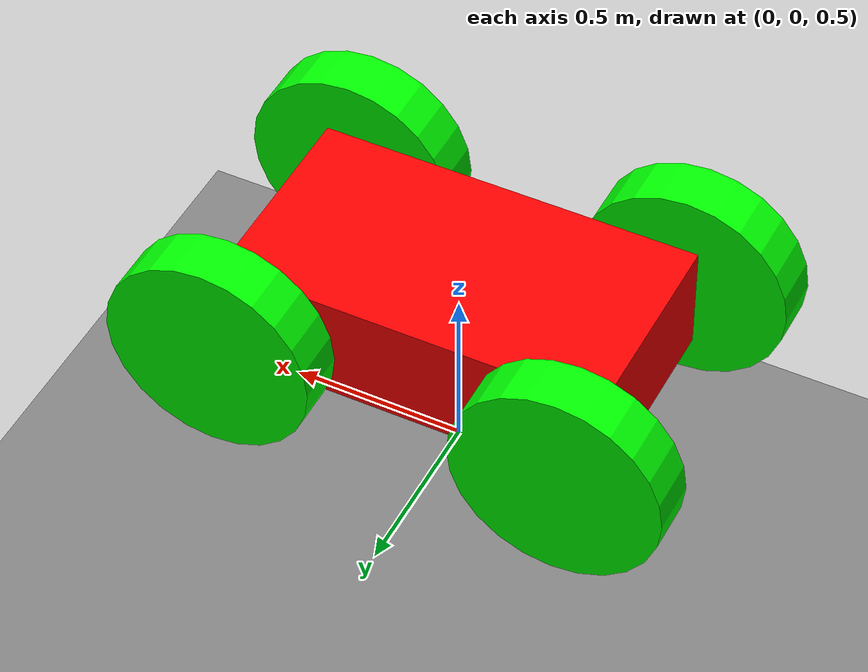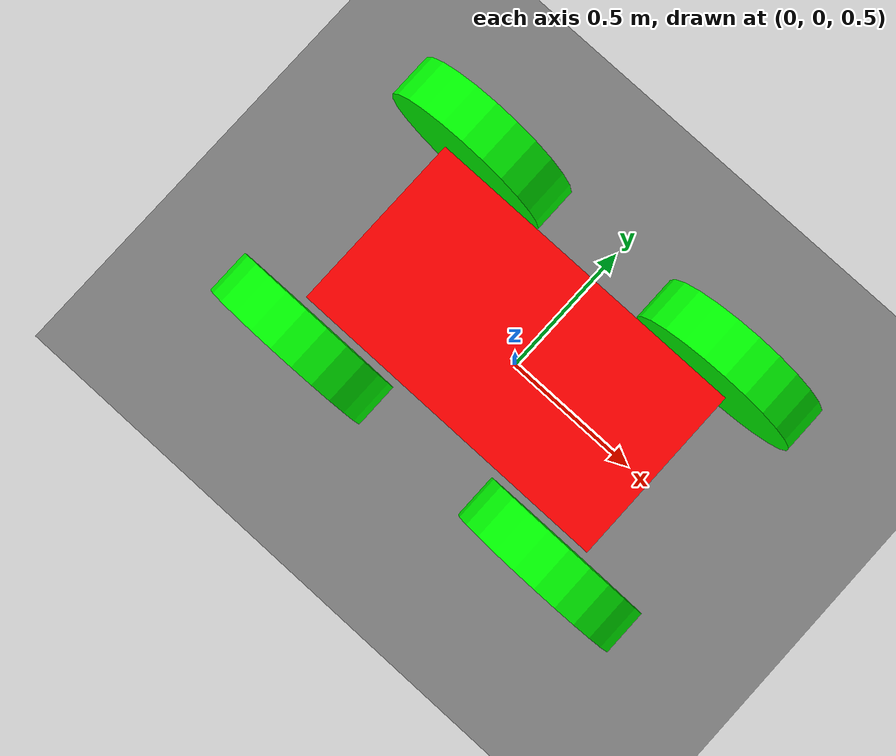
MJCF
<mujoco model="ugv">

    <statistic center="0 0 0.5" extent="5.2"/>
    <option gravity="0 0 -10"/>

    <!--Actuators-->
    <actuator>
        <position class="actuator" joint="frontRightJoint"/>
        <position class="actuator" joint="frontLeftJoint"/>
        <position class="actuator" joint="rearRightJoint"/>
        <position class="actuator" joint="rearLeftJoint"/>
    </actuator>

    <!--Default coeffs for position control-->
    <default class="ugv">
        <default class="actuator">
            <position kp="100" kv="20"/>
        </default>
    </default>

    <!--Default coeffs for wheel-->
    <default class="ugv">
        <default class="wheel">
            <joint type="hinge"/>
            <geom type="cylinder" size="0.3 0.075" rgba="0 1 0 1"/>
        </default>
    </default>

    <worldbody>
        <light diffuse="0.5 0.5 0.5" pos="0 0 3" dir="0 0 -1"/>
        <geom type="plane" size="1000.0 1000.0 0.1"/>
        <body name="chassis" pos="0 0 1" euler="0 0 0">
            <joint type="free"/>
            <geom type="box" size="0.55 0.3 0.16" rgba="1 0 0 1"/>

            <!--Wheels-->
            <body name="frontRightWheel" pos="0.5 -0.4 0" euler="90 0 0">
                <joint class="wheel" name="frontRightJoint"/>
                <geom class="wheel"/>
            </body>
            <body name="frontLeftWheel" pos="0.5 0.4 0" euler="90 0 0">
                <joint class="wheel" name="frontLeftJoint"/>
                <geom class="wheel"/>
            </body>
            <body name="rearRightWheel" pos="-0.5 -0.4 0" euler="90 0 0">
                <joint class="wheel" name="rearRightJoint"/>
                <geom class="wheel"/>
            </body>
            <body name="rearLeftWheel" pos="-0.5 0.4 0" euler="90 0 0">
                <joint class="wheel" name="rearLeftJoint"/>
                <geom class="wheel"/>
            </body>
        </body>
    </worldbody>
</mujoco>
